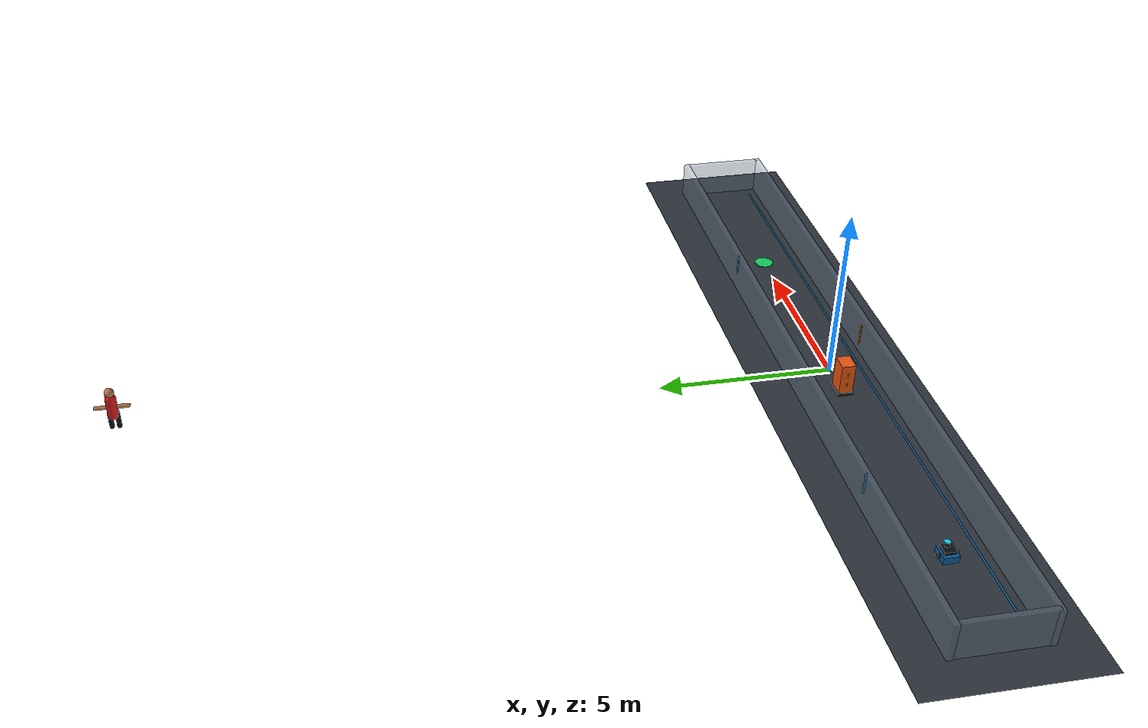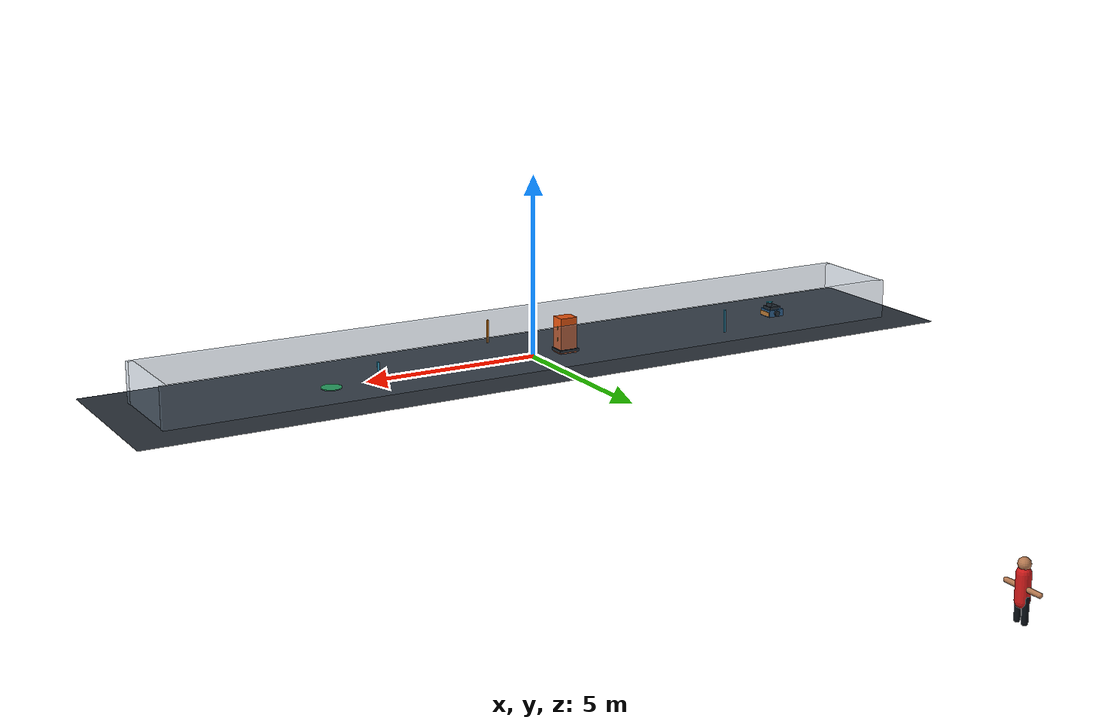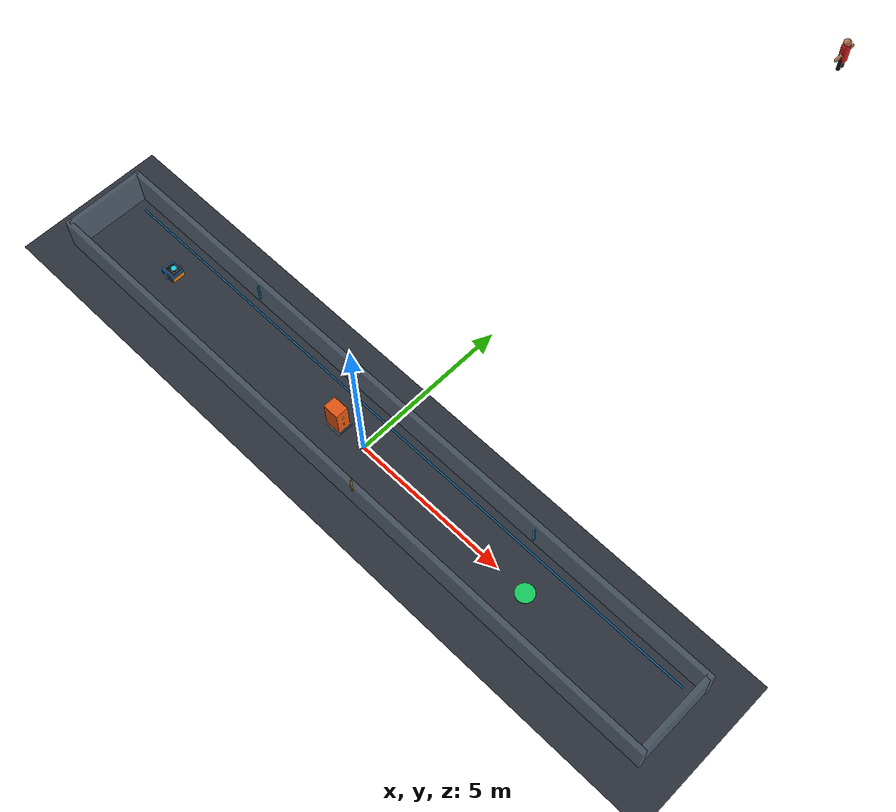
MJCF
<mujoco model="jdamr_nav2_portfolio">
  <compiler angle="radian"/>
  <option timestep="0.01" gravity="0 0 -9.81"/>
  <visual>
    <global offwidth="1280" offheight="720"
            azimuth="180" elevation="-20"/>
    <quality shadowsize="4096" offsamples="4"/>
    <headlight ambient="0.20 0.23 0.28" diffuse="0.72 0.76 0.82"
               specular="0.25 0.25 0.25"/>
    <rgba haze="0.12 0.16 0.22 1"/>
  </visual>
  <asset>
    <texture name="sky" type="skybox" builtin="gradient"
             rgb1="0.04 0.07 0.12" rgb2="0.22 0.30 0.42"
             width="512" height="3072"/>
    <texture name="floor_tex" type="2d" builtin="checker"
             rgb1="0.16 0.18 0.21" rgb2="0.20 0.23 0.27"
             width="512" height="512"/>
    <material name="floor" texture="floor_tex" texrepeat="16 3"
              reflectance="0.08" shininess="0.3"/>
    <material name="wall" rgba="0.48 0.56 0.64 0.38" roughness="0.75"/>
    <material name="robot" rgba="0.06 0.36 0.62 1"
              metallic="0.35" roughness="0.32"/>
    <material name="robot_dark" rgba="0.035 0.055 0.075 1"
              metallic="0.45" roughness="0.28"/>
    <material name="crate" rgba="0.92 0.34 0.07 1" roughness="0.55"/>
    <material name="warning" rgba="0.98 0.78 0.08 1" emission="0.08"/>
    <material name="person" rgba="0.82 0.10 0.10 1" roughness="0.7"/>
    <material name="skin" rgba="0.72 0.48 0.32 1" roughness="0.8"/>
  </asset>
  <worldbody>
    <light pos="-4 -1 5" dir="0.35 0.08 -1"
           diffuse="0.85 0.88 0.95" castshadow="true"/>
    <light pos="4 1 4" dir="-0.25 -0.05 -1"
           diffuse="0.55 0.68 0.85" castshadow="true"/>
    <geom name="floor" type="plane" size="12 2.4 0.1" material="floor"/>
    <geom name="north_wall" type="box" pos="0 1.25 0.55"
          size="11 0.08 0.55" material="wall"/>
    <geom name="south_wall" type="box" pos="0 -1.25 0.55"
          size="11 0.08 0.55" material="wall"/>
    <geom name="west_wall" type="box" pos="-10.9 0 0.55"
          size="0.08 1.25 0.55" material="wall"/>
    <geom name="east_wall" type="box" pos="10.9 0 0.55"
          size="0.08 1.25 0.55" material="wall"/>
    <geom name="lane_north" type="box" pos="0 0.92 0.006"
          size="10.5 0.025 0.006" rgba="0.08 0.52 0.80 0.75"
          contype="0" conaffinity="0"/>
    <geom name="lane_south" type="box" pos="0 -0.92 0.006"
          size="10.5 0.025 0.006" rgba="0.08 0.52 0.80 0.75"
          contype="0" conaffinity="0"/>
    <geom name="goal" type="cylinder" pos="6 0 0.012"
          size="0.28 0.012" rgba="0.08 0.82 0.38 0.9"
          contype="0" conaffinity="0"/>
    <body name="route_crate" pos="-1.0 0.0 0">
      <geom name="route_collision" type="box" pos="0 0 0.5"
            size="0.25 0.2 0.5" material="crate"/>
      <geom type="box" pos="0 0 0.08"
            size="0.29 0.24000000000000002 0.035"
            material="robot_dark"/>
      <geom type="box" pos="0 0 0.38"
            size="0.256 0.018 0.055"
            material="warning" contype="0" conaffinity="0"/>
      <geom type="box" pos="0 0 0.70"
            size="0.256 0.018 0.055"
            material="warning" contype="0" conaffinity="0"/>
    </body>
    <body name="robot" mocap="true" pos="-8 0 0.14">
      <geom name="base" type="box" pos="0 0 0.10"
            size="0.24 0.21 0.10" material="robot"/>
      <geom type="box" pos="0.02 0 0.24"
            size="0.17 0.16 0.045" material="robot_dark"/>
      <geom type="cylinder" pos="0.11 0 0.34"
            size="0.075 0.055" material="robot_dark"/>
      <geom type="cylinder" pos="0.11 0 0.402" size="0.085 0.008"
            rgba="0.04 0.85 0.95 1" contype="0" conaffinity="0"/>
      <geom type="cylinder" pos="0 0.235 0.10" euler="1.5708 0 0"
            size="0.075 0.035" material="robot_dark"/>
      <geom type="cylinder" pos="0 -0.235 0.10" euler="1.5708 0 0"
            size="0.075 0.035" material="robot_dark"/>
      <geom type="box" pos="0.245 0 0.08" size="0.018 0.20 0.065"
            rgba="0.96 0.53 0.07 1"/>
    </body>
    <body name="pedestrian" mocap="true" pos="1 20 0.5">
      <geom name="person_torso" type="capsule" pos="0 0 0.16"
            size="0.15 0.27" material="person"/>
      <geom name="person_head" type="sphere" pos="0 0 0.62"
            size="0.13" material="skin"/>
      <geom type="capsule" pos="0 0.10 -0.27"
            size="0.065 0.24" material="robot_dark"/>
      <geom type="capsule" pos="0 -0.10 -0.27"
            size="0.065 0.24" material="robot_dark"/>
      <geom type="capsule" pos="0 0.22 0.15" euler="1.5708 0 0"
            size="0.055 0.22" material="skin"/>
      <geom type="capsule" pos="0 -0.22 0.15" euler="1.5708 0 0"
            size="0.055 0.22" material="skin"/>
    </body>
    <body pos="-5.5 1.16 0.55">
      <geom type="box" size="0.025 0.02 0.32"
            rgba="0.10 0.72 0.92 1" contype="0" conaffinity="0"/>
    </body>
    <body pos="0.8 -1.16 0.55">
      <geom type="box" size="0.025 0.02 0.32"
            rgba="0.98 0.55 0.08 1" contype="0" conaffinity="0"/>
    </body>
    <body pos="5.2 1.16 0.55">
      <geom type="box" size="0.025 0.02 0.32"
            rgba="0.10 0.72 0.92 1" contype="0" conaffinity="0"/>
    </body>
  </worldbody>
</mujoco>
